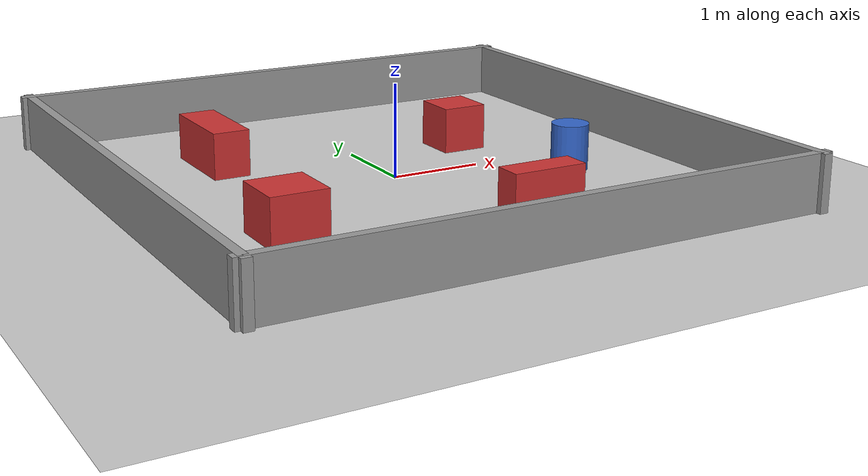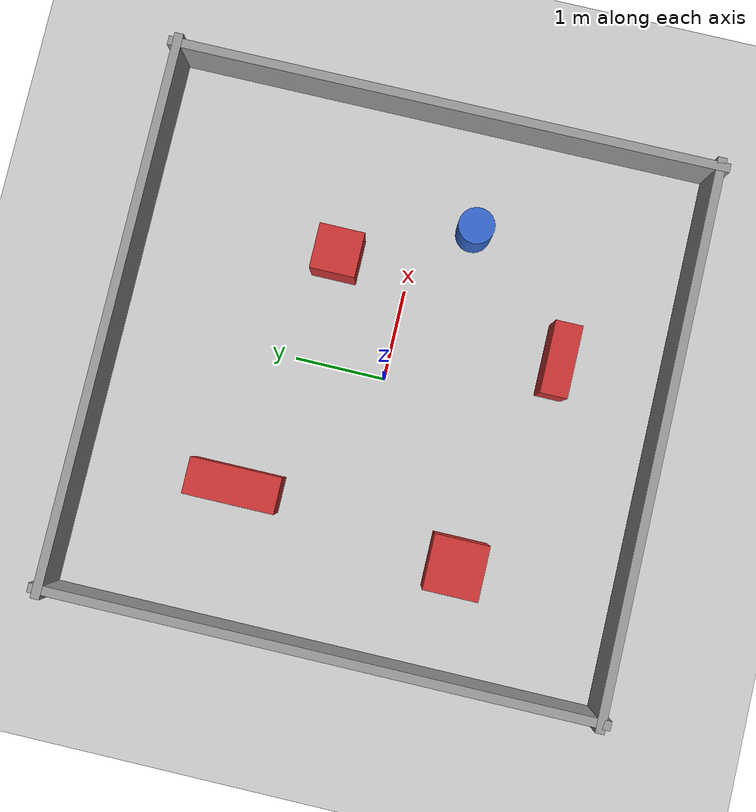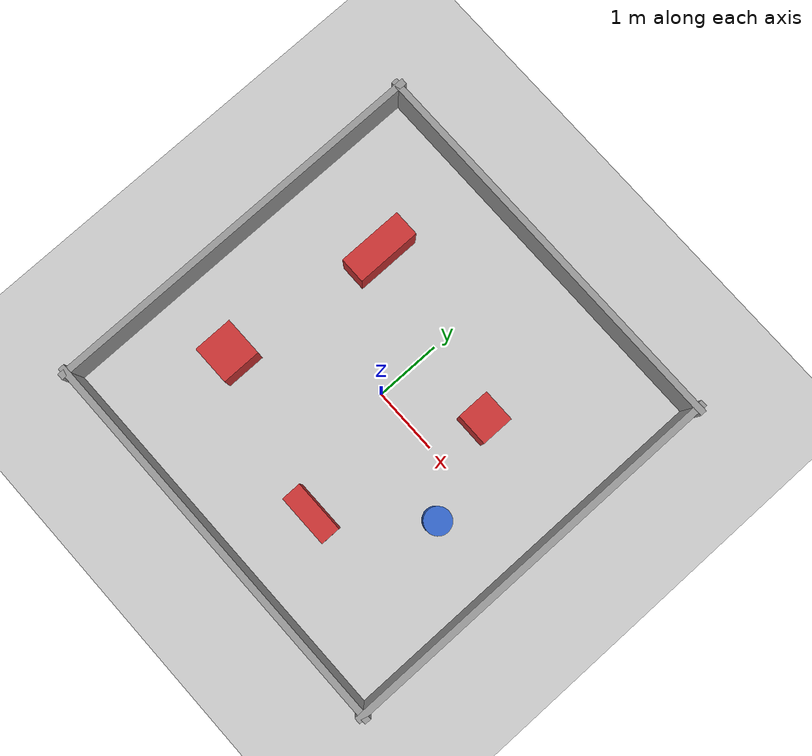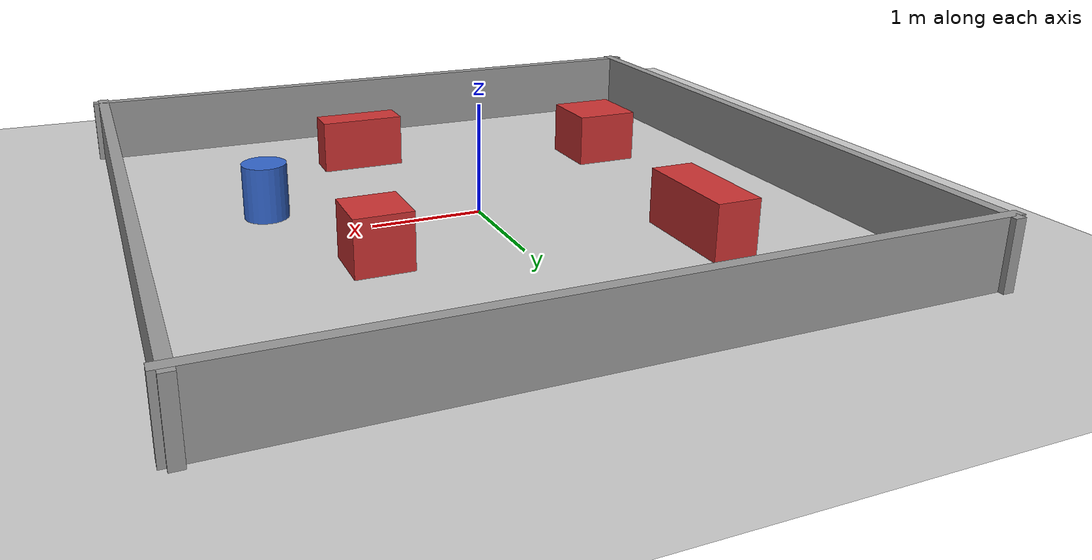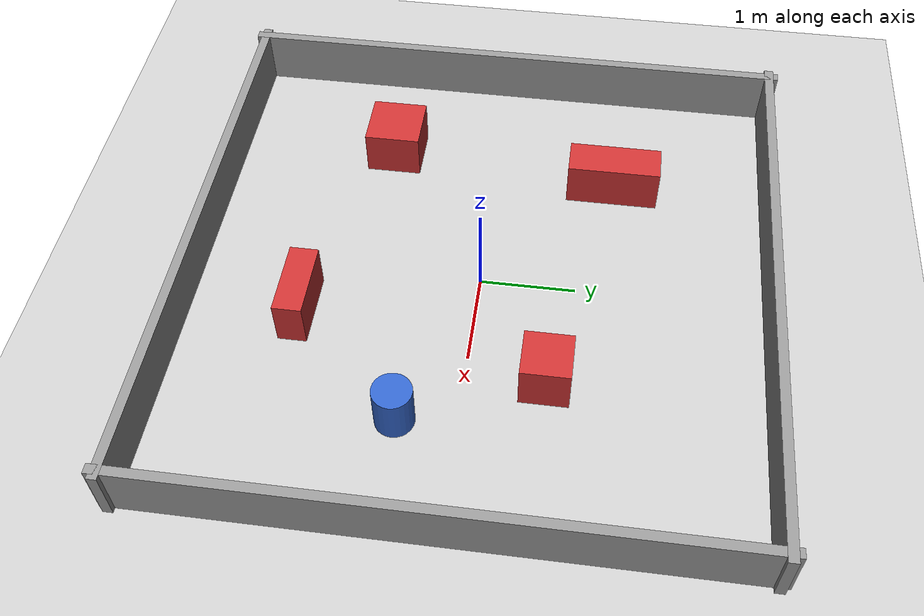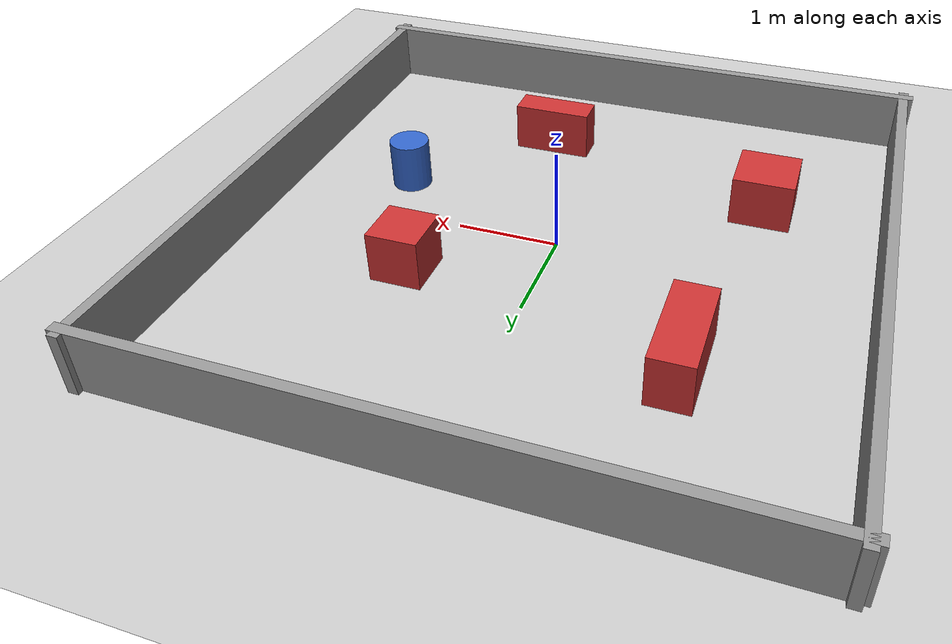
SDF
<?xml version="1.0" ?>
<sdf version="1.6">
  <world name="playground">
    <physics name="1ms" type="ignored">
      <max_step_size>0.001</max_step_size>
      <real_time_factor>1.0</real_time_factor>
    </physics>
    <plugin
      filename="gz-sim-physics-system"
      name="gz::sim::systems::Physics">
    </plugin>
    <plugin
      filename="gz-sim-user-commands-system"
      name="gz::sim::systems::UserCommands">
    </plugin>
    <plugin
      filename="gz-sim-scene-broadcaster-system"
      name="gz::sim::systems::SceneBroadcaster">
    </plugin>
    <plugin
      filename="gz-sim-contact-system"
      name="gz::sim::systems::Contact">
    </plugin>
    <plugin
      filename="gz-sim-imu-system"
      name="gz::sim::systems::Imu">
    </plugin>
    <!-- gpu_lidar / camera など描画系センサを毎ステップ描画し gz topic に publish する -->
    <plugin
      filename="gz-sim-sensors-system"
      name="gz::sim::systems::Sensors">
      <render_engine>ogre2</render_engine>
    </plugin>

    <light type="directional" name="sun">
      <cast_shadows>true</cast_shadows>
      <pose>0 0 10 0 0 0</pose>
      <diffuse>0.8 0.8 0.8 1</diffuse>
      <specular>0.2 0.2 0.2 1</specular>
      <attenuation>
        <range>1000</range>
        <constant>0.9</constant>
        <linear>0.01</linear>
        <quadratic>0.001</quadratic>
      </attenuation>
      <direction>-0.5 0.1 -0.9</direction>
    </light>

    <model name="ground_plane">
      <static>true</static>
      <link name="link">
        <collision name="collision">
          <geometry>
            <plane>
              <normal>0 0 1</normal>
              <size>100 100</size>
            </plane>
          </geometry>
        </collision>
        <visual name="visual">
          <geometry>
            <plane>
              <normal>0 0 1</normal>
              <size>100 100</size>
            </plane>
          </geometry>
          <material>
            <ambient>0.8 0.8 0.8 1</ambient>
            <diffuse>0.8 0.8 0.8 1</diffuse>
            <specular>0.8 0.8 0.8 1</specular>
          </material>
        </visual>
      </link>
    </model>

    <!-- 改善1: 6×6m の部屋を薄い壁で囲う。
         開けた平面だと 2D lidar が大半の方向で何も測れずスキャンマッチが不安定になるため、
         周囲を壁で囲って常にどこかの壁を捉えられるようにする。
         壁は厚さ0.1m・高さ0.6m の静的ボックス。長さ6.2mで四隅を重ねて隙間を無くす。 -->
    <model name="wall_north">
      <static>true</static>
      <pose>0 3 0.3 0 0 0</pose>
      <link name="link">
        <collision name="c"><geometry><box><size>6.2 0.1 0.6</size></box></geometry></collision>
        <visual name="v">
          <geometry><box><size>6.2 0.1 0.6</size></box></geometry>
          <material><diffuse>0.6 0.6 0.6 1</diffuse></material>
        </visual>
      </link>
    </model>

    <model name="wall_south">
      <static>true</static>
      <pose>0 -3 0.3 0 0 0</pose>
      <link name="link">
        <collision name="c"><geometry><box><size>6.2 0.1 0.6</size></box></geometry></collision>
        <visual name="v">
          <geometry><box><size>6.2 0.1 0.6</size></box></geometry>
          <material><diffuse>0.6 0.6 0.6 1</diffuse></material>
        </visual>
      </link>
    </model>

    <model name="wall_east">
      <static>true</static>
      <pose>3 0 0.3 0 0 0</pose>
      <link name="link">
        <collision name="c"><geometry><box><size>0.1 6.2 0.6</size></box></geometry></collision>
        <visual name="v">
          <geometry><box><size>0.1 6.2 0.6</size></box></geometry>
          <material><diffuse>0.6 0.6 0.6 1</diffuse></material>
        </visual>
      </link>
    </model>

    <model name="wall_west">
      <static>true</static>
      <pose>-3 0 0.3 0 0 0</pose>
      <link name="link">
        <collision name="c"><geometry><box><size>0.1 6.2 0.6</size></box></geometry></collision>
        <visual name="v">
          <geometry><box><size>0.1 6.2 0.6</size></box></geometry>
          <material><diffuse>0.6 0.6 0.6 1</diffuse></material>
        </visual>
      </link>
    </model>

    <!-- 改善2: 内部の箱を非対称に配置する。
         原点まわりの十字対称だと AMCL が 90/180°回した姿勢と見分けにくく粒子が収束しにくい。
         位置・大きさをバラして各場所のスキャン形状を区別しやすくする。原点(0,0)付近は
         ロボットのスポーン位置なので空けておく。 -->
    <model name="box1">
      <static>true</static>
      <pose>1.2 0.8 0.25 0 0 0</pose>
      <link name="link">
        <collision name="c"><geometry><box><size>0.5 0.5 0.5</size></box></geometry></collision>
        <visual name="v">
          <geometry><box><size>0.5 0.5 0.5</size></box></geometry>
          <material><diffuse>0.8 0.2 0.2 1</diffuse></material>
        </visual>
      </link>
    </model>

    <model name="box2">
      <static>true</static>
      <pose>-1.5 1.3 0.25 0 0 0</pose>
      <link name="link">
        <collision name="c"><geometry><box><size>0.4 1.0 0.5</size></box></geometry></collision>
        <visual name="v">
          <geometry><box><size>0.4 1.0 0.5</size></box></geometry>
          <material><diffuse>0.8 0.2 0.2 1</diffuse></material>
        </visual>
      </link>
    </model>

    <model name="box3">
      <static>true</static>
      <pose>0.6 -1.8 0.25 0 0 0</pose>
      <link name="link">
        <collision name="c"><geometry><box><size>0.8 0.3 0.5</size></box></geometry></collision>
        <visual name="v">
          <geometry><box><size>0.8 0.3 0.5</size></box></geometry>
          <material><diffuse>0.8 0.2 0.2 1</diffuse></material>
        </visual>
      </link>
    </model>

    <model name="box4">
      <static>true</static>
      <pose>-1.8 -1.2 0.25 0 0 0</pose>
      <link name="link">
        <collision name="c"><geometry><box><size>0.6 0.6 0.5</size></box></geometry></collision>
        <visual name="v">
          <geometry><box><size>0.6 0.6 0.5</size></box></geometry>
          <material><diffuse>0.8 0.2 0.2 1</diffuse></material>
        </visual>
      </link>
    </model>

    <!-- 改善3: 円柱を混ぜて特徴の変化を増やす（箱と違う曲面でスキャン形状が区別しやすくなる）。 -->
    <model name="cylinder1">
      <static>true</static>
      <pose>1.8 -0.6 0.25 0 0 0</pose>
      <link name="link">
        <collision name="c"><geometry><cylinder><radius>0.2</radius><length>0.5</length></cylinder></geometry></collision>
        <visual name="v">
          <geometry><cylinder><radius>0.2</radius><length>0.5</length></cylinder></geometry>
          <material><diffuse>0.2 0.4 0.8 1</diffuse></material>
        </visual>
      </link>
    </model>

  </world>
</sdf>
